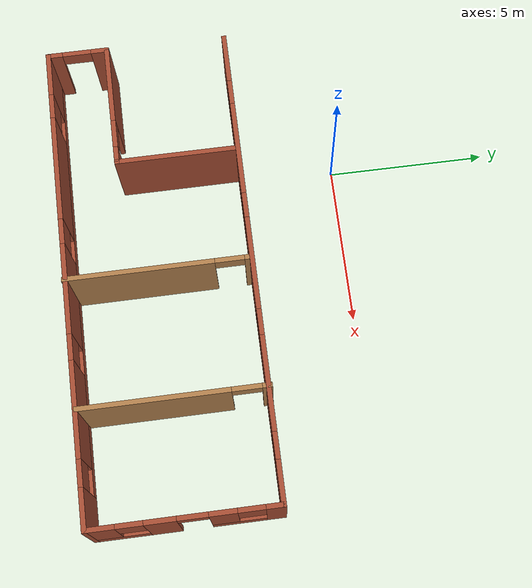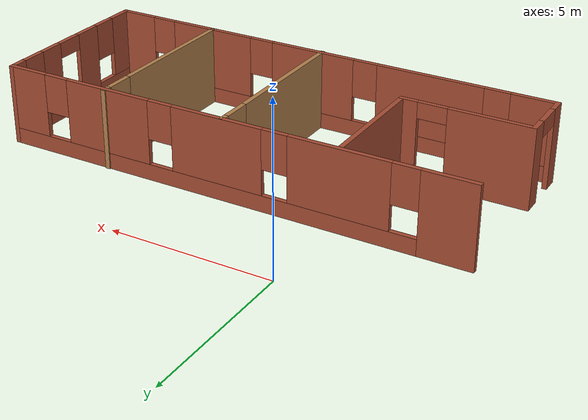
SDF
<?xml version='1.0'?>
<sdf version='1.6'>
  <model name='Building'>
    <pose frame=''>3.31458 -5.75778 0 0 -0 0</pose>
    <link name='Wall_0'>
      <pose frame=''>0.030417 2.79778 0 0 -0 0</pose>
      <visual name='Wall_0_Visual_0'>
        <pose frame=''>-6.69722 0 1.25 0 -0 0</pose>
        <geometry>
          <box>
            <size>1.60557 0.15 2.5</size>
          </box>
        </geometry>
        <material>
          <script>
            <uri>file://media/materials/scripts/gazebo.material</uri>
            <name>Gazebo/Bricks</name>
          </script>
          <ambient>0.996078 0.47451 0.0196078 1</ambient>
        </material>
        <meta>
          <layer>0</layer>
        </meta>
      </visual>
      <collision name='Wall_0_Collision_0'>
        <geometry>
          <box>
            <size>1.60557 0.15 2.5</size>
          </box>
        </geometry>
        <pose frame=''>-6.69722 0 1.25 0 -0 0</pose>
      </collision>
      <visual name='Wall_0_Visual_1'>
        <pose frame=''>0.802784 0 0.25 0 -0 0</pose>
        <geometry>
          <box>
            <size>13.3944 0.15 0.5</size>
          </box>
        </geometry>
        <material>
          <script>
            <uri>file://media/materials/scripts/gazebo.material</uri>
            <name>Gazebo/Bricks</name>
          </script>
          <ambient>0.996078 0.47451 0.0196078 1</ambient>
        </material>
        <meta>
          <layer>0</layer>
        </meta>
      </visual>
      <collision name='Wall_0_Collision_1'>
        <geometry>
          <box>
            <size>13.3944 0.15 0.5</size>
          </box>
        </geometry>
        <pose frame=''>0.802784 0 0.25 0 -0 0</pose>
      </collision>
      <visual name='Wall_0_Visual_2'>
        <pose frame=''>-3.57459 0 1.5 0 -0 0</pose>
        <geometry>
          <box>
            <size>3.03968 0.15 2</size>
          </box>
        </geometry>
        <material>
          <script>
            <uri>file://media/materials/scripts/gazebo.material</uri>
            <name>Gazebo/Bricks</name>
          </script>
          <ambient>0.996078 0.47451 0.0196078 1</ambient>
        </material>
        <meta>
          <layer>0</layer>
        </meta>
      </visual>
      <collision name='Wall_0_Collision_2'>
        <geometry>
          <box>
            <size>3.03968 0.15 2</size>
          </box>
        </geometry>
        <pose frame=''>-3.57459 0 1.5 0 -0 0</pose>
      </collision>
      <visual name='Wall_0_Visual_3'>
        <pose frame=''>0.207263 0 1.5 0 -0 0</pose>
        <geometry>
          <box>
            <size>2.92403 0.15 2</size>
          </box>
        </geometry>
        <material>
          <script>
            <uri>file://media/materials/scripts/gazebo.material</uri>
            <name>Gazebo/Bricks</name>
          </script>
          <ambient>0.996078 0.47451 0.0196078 1</ambient>
        </material>
        <meta>
          <layer>0</layer>
        </meta>
      </visual>
      <collision name='Wall_0_Collision_3'>
        <geometry>
          <box>
            <size>2.92403 0.15 2</size>
          </box>
        </geometry>
        <pose frame=''>0.207263 0 1.5 0 -0 0</pose>
      </collision>
      <visual name='Wall_0_Visual_4'>
        <pose frame=''>3.90816 0 1.5 0 -0 0</pose>
        <geometry>
          <box>
            <size>2.87777 0.15 2</size>
          </box>
        </geometry>
        <material>
          <script>
            <uri>file://media/materials/scripts/gazebo.material</uri>
            <name>Gazebo/Bricks</name>
          </script>
          <ambient>0.996078 0.47451 0.0196078 1</ambient>
        </material>
        <meta>
          <layer>0</layer>
        </meta>
      </visual>
      <collision name='Wall_0_Collision_4'>
        <geometry>
          <box>
            <size>2.87777 0.15 2</size>
          </box>
        </geometry>
        <pose frame=''>3.90816 0 1.5 0 -0 0</pose>
      </collision>
      <visual name='Wall_0_Visual_5'>
        <pose frame=''>6.82352 0 1.5 0 -0 0</pose>
        <geometry>
          <box>
            <size>1.35296 0.15 2</size>
          </box>
        </geometry>
        <material>
          <script>
            <uri>file://media/materials/scripts/gazebo.material</uri>
            <name>Gazebo/Bricks</name>
          </script>
          <ambient>0.996078 0.47451 0.0196078 1</ambient>
        </material>
        <meta>
          <layer>0</layer>
        </meta>
      </visual>
      <collision name='Wall_0_Collision_5'>
        <geometry>
          <box>
            <size>1.35296 0.15 2</size>
          </box>
        </geometry>
        <pose frame=''>6.82352 0 1.5 0 -0 0</pose>
      </collision>
      <visual name='Wall_0_Visual_6'>
        <pose frame=''>-5.49443 0 1.9 0 -0 0</pose>
        <geometry>
          <box>
            <size>0.8 0.15 1.2</size>
          </box>
        </geometry>
        <material>
          <script>
            <uri>file://media/materials/scripts/gazebo.material</uri>
            <name>Gazebo/Bricks</name>
          </script>
          <ambient>0.996078 0.47451 0.0196078 1</ambient>
        </material>
        <meta>
          <layer>0</layer>
        </meta>
      </visual>
      <collision name='Wall_0_Collision_6'>
        <geometry>
          <box>
            <size>0.8 0.15 1.2</size>
          </box>
        </geometry>
        <pose frame=''>-5.49443 0 1.9 0 -0 0</pose>
      </collision>
      <visual name='Wall_0_Visual_7'>
        <pose frame=''>-1.65475 0 1.9 0 -0 0</pose>
        <geometry>
          <box>
            <size>0.8 0.15 1.2</size>
          </box>
        </geometry>
        <material>
          <script>
            <uri>file://media/materials/scripts/gazebo.material</uri>
            <name>Gazebo/Bricks</name>
          </script>
          <ambient>0.996078 0.47451 0.0196078 1</ambient>
        </material>
        <meta>
          <layer>0</layer>
        </meta>
      </visual>
      <collision name='Wall_0_Collision_7'>
        <geometry>
          <box>
            <size>0.8 0.15 1.2</size>
          </box>
        </geometry>
        <pose frame=''>-1.65475 0 1.9 0 -0 0</pose>
      </collision>
      <visual name='Wall_0_Visual_8'>
        <pose frame=''>2.06928 0 1.9 0 -0 0</pose>
        <geometry>
          <box>
            <size>0.8 0.15 1.2</size>
          </box>
        </geometry>
        <material>
          <script>
            <uri>file://media/materials/scripts/gazebo.material</uri>
            <name>Gazebo/Bricks</name>
          </script>
          <ambient>0.996078 0.47451 0.0196078 1</ambient>
        </material>
        <meta>
          <layer>0</layer>
        </meta>
      </visual>
      <collision name='Wall_0_Collision_8'>
        <geometry>
          <box>
            <size>0.8 0.15 1.2</size>
          </box>
        </geometry>
        <pose frame=''>2.06928 0 1.9 0 -0 0</pose>
      </collision>
      <visual name='Wall_0_Visual_9'>
        <pose frame=''>5.74704 0 1.9 0 -0 0</pose>
        <geometry>
          <box>
            <size>0.8 0.15 1.2</size>
          </box>
        </geometry>
        <material>
          <script>
            <uri>file://media/materials/scripts/gazebo.material</uri>
            <name>Gazebo/Bricks</name>
          </script>
          <ambient>0.996078 0.47451 0.0196078 1</ambient>
        </material>
        <meta>
          <layer>0</layer>
        </meta>
      </visual>
      <collision name='Wall_0_Collision_9'>
        <geometry>
          <box>
            <size>0.8 0.15 1.2</size>
          </box>
        </geometry>
        <pose frame=''>5.74704 0 1.9 0 -0 0</pose>
      </collision>
    </link>
    <link name='Wall_1'>
      <pose frame=''>7.45542 -0.002216 0 0 0 -1.5708</pose>
      <visual name='Wall_1_Visual_0'>
        <pose frame=''>-2.5839 0 1.25 0 -0 0</pose>
        <geometry>
          <box>
            <size>0.582198 0.15 2.5</size>
          </box>
        </geometry>
        <material>
          <script>
            <uri>file://media/materials/scripts/gazebo.material</uri>
            <name>Gazebo/Bricks</name>
          </script>
          <ambient>0.996078 0.47451 0.0196078 1</ambient>
        </material>
        <meta>
          <layer>0</layer>
        </meta>
      </visual>
      <collision name='Wall_1_Collision_0'>
        <geometry>
          <box>
            <size>0.582198 0.15 2.5</size>
          </box>
        </geometry>
        <pose frame=''>-2.5839 0 1.25 0 -0 0</pose>
      </collision>
      <visual name='Wall_1_Visual_1'>
        <pose frame=''>0.68813 0 1.25 0 -0 0</pose>
        <geometry>
          <box>
            <size>0.931057 0.15 2.5</size>
          </box>
        </geometry>
        <material>
          <script>
            <uri>file://media/materials/scripts/gazebo.material</uri>
            <name>Gazebo/Bricks</name>
          </script>
          <ambient>0.996078 0.47451 0.0196078 1</ambient>
        </material>
        <meta>
          <layer>0</layer>
        </meta>
      </visual>
      <collision name='Wall_1_Collision_1'>
        <geometry>
          <box>
            <size>0.931057 0.15 2.5</size>
          </box>
        </geometry>
        <pose frame=''>0.68813 0 1.25 0 -0 0</pose>
      </collision>
      <visual name='Wall_1_Visual_2'>
        <pose frame=''>-1.4851 0 0.25 0 -0 0</pose>
        <geometry>
          <box>
            <size>1.6154 0.15 0.5</size>
          </box>
        </geometry>
        <material>
          <script>
            <uri>file://media/materials/scripts/gazebo.material</uri>
            <name>Gazebo/Bricks</name>
          </script>
          <ambient>0.996078 0.47451 0.0196078 1</ambient>
        </material>
        <meta>
          <layer>0</layer>
        </meta>
      </visual>
      <collision name='Wall_1_Collision_2'>
        <geometry>
          <box>
            <size>1.6154 0.15 0.5</size>
          </box>
        </geometry>
        <pose frame=''>-1.4851 0 0.25 0 -0 0</pose>
      </collision>
      <visual name='Wall_1_Visual_3'>
        <pose frame=''>2.01433 0 0.25 0 -0 0</pose>
        <geometry>
          <box>
            <size>1.72134 0.15 0.5</size>
          </box>
        </geometry>
        <material>
          <script>
            <uri>file://media/materials/scripts/gazebo.material</uri>
            <name>Gazebo/Bricks</name>
          </script>
          <ambient>0.996078 0.47451 0.0196078 1</ambient>
        </material>
        <meta>
          <layer>0</layer>
        </meta>
      </visual>
      <collision name='Wall_1_Collision_3'>
        <geometry>
          <box>
            <size>1.72134 0.15 0.5</size>
          </box>
        </geometry>
        <pose frame=''>2.01433 0 0.25 0 -0 0</pose>
      </collision>
      <visual name='Wall_1_Visual_4'>
        <pose frame=''>-1.0851 0 1.5 0 -0 0</pose>
        <geometry>
          <box>
            <size>0.815404 0.15 2</size>
          </box>
        </geometry>
        <material>
          <script>
            <uri>file://media/materials/scripts/gazebo.material</uri>
            <name>Gazebo/Bricks</name>
          </script>
          <ambient>0.996078 0.47451 0.0196078 1</ambient>
        </material>
        <meta>
          <layer>0</layer>
        </meta>
      </visual>
      <collision name='Wall_1_Collision_4'>
        <geometry>
          <box>
            <size>0.815404 0.15 2</size>
          </box>
        </geometry>
        <pose frame=''>-1.0851 0 1.5 0 -0 0</pose>
      </collision>
      <visual name='Wall_1_Visual_5'>
        <pose frame=''>-1.0851 0 1.5 0 -0 0</pose>
        <geometry>
          <box>
            <size>0.815404 0.15 2</size>
          </box>
        </geometry>
        <material>
          <script>
            <uri>file://media/materials/scripts/gazebo.material</uri>
            <name>Gazebo/Bricks</name>
          </script>
          <ambient>0.996078 0.47451 0.0196078 1</ambient>
        </material>
        <meta>
          <layer>0</layer>
        </meta>
      </visual>
      <collision name='Wall_1_Collision_5'>
        <geometry>
          <box>
            <size>0.815404 0.15 2</size>
          </box>
        </geometry>
        <pose frame=''>-1.0851 0 1.5 0 -0 0</pose>
      </collision>
      <visual name='Wall_1_Visual_6'>
        <pose frame=''>2.41433 0 1.5 0 -0 0</pose>
        <geometry>
          <box>
            <size>0.921342 0.15 2</size>
          </box>
        </geometry>
        <material>
          <script>
            <uri>file://media/materials/scripts/gazebo.material</uri>
            <name>Gazebo/Bricks</name>
          </script>
          <ambient>0.996078 0.47451 0.0196078 1</ambient>
        </material>
        <meta>
          <layer>0</layer>
        </meta>
      </visual>
      <collision name='Wall_1_Collision_6'>
        <geometry>
          <box>
            <size>0.921342 0.15 2</size>
          </box>
        </geometry>
        <pose frame=''>2.41433 0 1.5 0 -0 0</pose>
      </collision>
      <visual name='Wall_1_Visual_7'>
        <pose frame=''>-1.8928 0 1.9 0 -0 0</pose>
        <geometry>
          <box>
            <size>0.8 0.15 1.2</size>
          </box>
        </geometry>
        <material>
          <script>
            <uri>file://media/materials/scripts/gazebo.material</uri>
            <name>Gazebo/Bricks</name>
          </script>
          <ambient>0.996078 0.47451 0.0196078 1</ambient>
        </material>
        <meta>
          <layer>0</layer>
        </meta>
      </visual>
      <collision name='Wall_1_Collision_7'>
        <geometry>
          <box>
            <size>0.8 0.15 1.2</size>
          </box>
        </geometry>
        <pose frame=''>-1.8928 0 1.9 0 -0 0</pose>
      </collision>
      <visual name='Wall_1_Visual_8'>
        <pose frame=''>1.55366 0 1.9 0 -0 0</pose>
        <geometry>
          <box>
            <size>0.8 0.15 1.2</size>
          </box>
        </geometry>
        <material>
          <script>
            <uri>file://media/materials/scripts/gazebo.material</uri>
            <name>Gazebo/Bricks</name>
          </script>
          <ambient>0.996078 0.47451 0.0196078 1</ambient>
        </material>
        <meta>
          <layer>0</layer>
        </meta>
      </visual>
      <collision name='Wall_1_Collision_8'>
        <geometry>
          <box>
            <size>0.8 0.15 1.2</size>
          </box>
        </geometry>
        <pose frame=''>1.55366 0 1.9 0 -0 0</pose>
      </collision>
      <visual name='Wall_1_Visual_9'>
        <pose frame=''>-0.227398 0 2.25 0 -0 0</pose>
        <geometry>
          <box>
            <size>0.9 0.15 0.5</size>
          </box>
        </geometry>
        <material>
          <script>
            <uri>file://media/materials/scripts/gazebo.material</uri>
            <name>Gazebo/Bricks</name>
          </script>
          <ambient>0.996078 0.47451 0.0196078 1</ambient>
        </material>
        <meta>
          <layer>0</layer>
        </meta>
      </visual>
      <collision name='Wall_1_Collision_9'>
        <geometry>
          <box>
            <size>0.9 0.15 0.5</size>
          </box>
        </geometry>
        <pose frame=''>-0.227398 0 2.25 0 -0 0</pose>
      </collision>
      <visual name='Wall_1_Visual_10'>
        <pose frame=''>-0.227398 0 2.25 0 -0 0</pose>
        <geometry>
          <box>
            <size>0.9 0.15 0.5</size>
          </box>
        </geometry>
        <material>
          <script>
            <uri>file://media/materials/scripts/gazebo.material</uri>
            <name>Gazebo/Bricks</name>
          </script>
          <ambient>0.996078 0.47451 0.0196078 1</ambient>
        </material>
        <meta>
          <layer>0</layer>
        </meta>
      </visual>
      <collision name='Wall_1_Collision_10'>
        <geometry>
          <box>
            <size>0.9 0.15 0.5</size>
          </box>
        </geometry>
        <pose frame=''>-0.227398 0 2.25 0 -0 0</pose>
      </collision>
    </link>
    <link name='Wall_2'>
      <pose frame=''>0.007604 -2.80222 0 0 -0 3.14159</pose>
      <visual name='Wall_2_Visual_0'>
        <pose frame=''>-6.88103 0 1.25 0 -0 0</pose>
        <geometry>
          <box>
            <size>1.28356 0.15 2.5</size>
          </box>
        </geometry>
        <material>
          <script>
            <uri>file://media/materials/scripts/gazebo.material</uri>
            <name>Gazebo/Bricks</name>
          </script>
          <ambient>0.996078 0.47451 0.0196078 1</ambient>
        </material>
        <meta>
          <layer>0</layer>
        </meta>
      </visual>
      <collision name='Wall_2_Collision_0'>
        <geometry>
          <box>
            <size>1.28356 0.15 2.5</size>
          </box>
        </geometry>
        <pose frame=''>-6.88103 0 1.25 0 -0 0</pose>
      </collision>
      <visual name='Wall_2_Visual_1'>
        <pose frame=''>0.641782 0 0.25 0 -0 0</pose>
        <geometry>
          <box>
            <size>13.7621 0.15 0.5</size>
          </box>
        </geometry>
        <material>
          <script>
            <uri>file://media/materials/scripts/gazebo.material</uri>
            <name>Gazebo/Bricks</name>
          </script>
          <ambient>0.996078 0.47451 0.0196078 1</ambient>
        </material>
        <meta>
          <layer>0</layer>
        </meta>
      </visual>
      <collision name='Wall_2_Collision_1'>
        <geometry>
          <box>
            <size>13.7621 0.15 0.5</size>
          </box>
        </geometry>
        <pose frame=''>0.641782 0 0.25 0 -0 0</pose>
      </collision>
      <visual name='Wall_2_Visual_2'>
        <pose frame=''>-3.9888 0 1.5 0 -0 0</pose>
        <geometry>
          <box>
            <size>2.9009 0.15 2</size>
          </box>
        </geometry>
        <material>
          <script>
            <uri>file://media/materials/scripts/gazebo.material</uri>
            <name>Gazebo/Bricks</name>
          </script>
          <ambient>0.996078 0.47451 0.0196078 1</ambient>
        </material>
        <meta>
          <layer>0</layer>
        </meta>
      </visual>
      <collision name='Wall_2_Collision_2'>
        <geometry>
          <box>
            <size>2.9009 0.15 2</size>
          </box>
        </geometry>
        <pose frame=''>-3.9888 0 1.5 0 -0 0</pose>
      </collision>
      <visual name='Wall_2_Visual_3'>
        <pose frame=''>-0.321831 0 1.5 0 -0 0</pose>
        <geometry>
          <box>
            <size>2.83304 0.15 2</size>
          </box>
        </geometry>
        <material>
          <script>
            <uri>file://media/materials/scripts/gazebo.material</uri>
            <name>Gazebo/Bricks</name>
          </script>
          <ambient>0.996078 0.47451 0.0196078 1</ambient>
        </material>
        <meta>
          <layer>0</layer>
        </meta>
      </visual>
      <collision name='Wall_2_Collision_3'>
        <geometry>
          <box>
            <size>2.83304 0.15 2</size>
          </box>
        </geometry>
        <pose frame=''>-0.321831 0 1.5 0 -0 0</pose>
      </collision>
      <visual name='Wall_2_Visual_4'>
        <pose frame=''>3.59656 0 1.5 0 -0 0</pose>
        <geometry>
          <box>
            <size>3.40374 0.15 2</size>
          </box>
        </geometry>
        <material>
          <script>
            <uri>file://media/materials/scripts/gazebo.material</uri>
            <name>Gazebo/Bricks</name>
          </script>
          <ambient>0.996078 0.47451 0.0196078 1</ambient>
        </material>
        <meta>
          <layer>0</layer>
        </meta>
      </visual>
      <collision name='Wall_2_Collision_4'>
        <geometry>
          <box>
            <size>3.40374 0.15 2</size>
          </box>
        </geometry>
        <pose frame=''>3.59656 0 1.5 0 -0 0</pose>
      </collision>
      <visual name='Wall_2_Visual_5'>
        <pose frame=''>6.81062 0 1.5 0 -0 0</pose>
        <geometry>
          <box>
            <size>1.42439 0.15 2</size>
          </box>
        </geometry>
        <material>
          <script>
            <uri>file://media/materials/scripts/gazebo.material</uri>
            <name>Gazebo/Bricks</name>
          </script>
          <ambient>0.996078 0.47451 0.0196078 1</ambient>
        </material>
        <meta>
          <layer>0</layer>
        </meta>
      </visual>
      <collision name='Wall_2_Collision_5'>
        <geometry>
          <box>
            <size>1.42439 0.15 2</size>
          </box>
        </geometry>
        <pose frame=''>6.81062 0 1.5 0 -0 0</pose>
      </collision>
      <visual name='Wall_2_Visual_6'>
        <pose frame=''>-5.83925 0 1.9 0 -0 0</pose>
        <geometry>
          <box>
            <size>0.8 0.15 1.2</size>
          </box>
        </geometry>
        <material>
          <script>
            <uri>file://media/materials/scripts/gazebo.material</uri>
            <name>Gazebo/Bricks</name>
          </script>
          <ambient>0.996078 0.47451 0.0196078 1</ambient>
        </material>
        <meta>
          <layer>0</layer>
        </meta>
      </visual>
      <collision name='Wall_2_Collision_6'>
        <geometry>
          <box>
            <size>0.8 0.15 1.2</size>
          </box>
        </geometry>
        <pose frame=''>-5.83925 0 1.9 0 -0 0</pose>
      </collision>
      <visual name='Wall_2_Visual_7'>
        <pose frame=''>-2.13835 0 1.9 0 -0 0</pose>
        <geometry>
          <box>
            <size>0.8 0.15 1.2</size>
          </box>
        </geometry>
        <material>
          <script>
            <uri>file://media/materials/scripts/gazebo.material</uri>
            <name>Gazebo/Bricks</name>
          </script>
          <ambient>0.996078 0.47451 0.0196078 1</ambient>
        </material>
        <meta>
          <layer>0</layer>
        </meta>
      </visual>
      <collision name='Wall_2_Collision_7'>
        <geometry>
          <box>
            <size>0.8 0.15 1.2</size>
          </box>
        </geometry>
        <pose frame=''>-2.13835 0 1.9 0 -0 0</pose>
      </collision>
      <visual name='Wall_2_Visual_8'>
        <pose frame=''>1.49469 0 1.9 0 -0 0</pose>
        <geometry>
          <box>
            <size>0.8 0.15 1.2</size>
          </box>
        </geometry>
        <material>
          <script>
            <uri>file://media/materials/scripts/gazebo.material</uri>
            <name>Gazebo/Bricks</name>
          </script>
          <ambient>0.996078 0.47451 0.0196078 1</ambient>
        </material>
        <meta>
          <layer>0</layer>
        </meta>
      </visual>
      <collision name='Wall_2_Collision_8'>
        <geometry>
          <box>
            <size>0.8 0.15 1.2</size>
          </box>
        </geometry>
        <pose frame=''>1.49469 0 1.9 0 -0 0</pose>
      </collision>
      <visual name='Wall_2_Visual_9'>
        <pose frame=''>5.69843 0 1.9 0 -0 0</pose>
        <geometry>
          <box>
            <size>0.8 0.15 1.2</size>
          </box>
        </geometry>
        <material>
          <script>
            <uri>file://media/materials/scripts/gazebo.material</uri>
            <name>Gazebo/Bricks</name>
          </script>
          <ambient>0.996078 0.47451 0.0196078 1</ambient>
        </material>
        <meta>
          <layer>0</layer>
        </meta>
      </visual>
      <collision name='Wall_2_Collision_9'>
        <geometry>
          <box>
            <size>0.8 0.15 1.2</size>
          </box>
        </geometry>
        <pose frame=''>5.69843 0 1.9 0 -0 0</pose>
      </collision>
    </link>
    <link name='Wall_3'>
      <pose frame=''>-7.45542 -1.87722 0 0 -0 1.5708</pose>
      <visual name='Wall_3_Visual_0'>
        <pose frame=''>-0.736618 0 1.25 0 -0 0</pose>
        <geometry>
          <box>
            <size>0.526763 0.15 2.5</size>
          </box>
        </geometry>
        <material>
          <script>
            <uri>file://media/materials/scripts/gazebo.material</uri>
            <name>Gazebo/Bricks</name>
          </script>
          <ambient>0.996078 0.47451 0.0196078 1</ambient>
        </material>
        <meta>
          <layer>0</layer>
        </meta>
      </visual>
      <collision name='Wall_3_Collision_0'>
        <geometry>
          <box>
            <size>0.526763 0.15 2.5</size>
          </box>
        </geometry>
        <pose frame=''>-0.736618 0 1.25 0 -0 0</pose>
      </collision>
      <visual name='Wall_3_Visual_1'>
        <pose frame=''>0.713382 0 1.25 0 -0 0</pose>
        <geometry>
          <box>
            <size>0.573237 0.15 2.5</size>
          </box>
        </geometry>
        <material>
          <script>
            <uri>file://media/materials/scripts/gazebo.material</uri>
            <name>Gazebo/Bricks</name>
          </script>
          <ambient>0.996078 0.47451 0.0196078 1</ambient>
        </material>
        <meta>
          <layer>0</layer>
        </meta>
      </visual>
      <collision name='Wall_3_Collision_1'>
        <geometry>
          <box>
            <size>0.573237 0.15 2.5</size>
          </box>
        </geometry>
        <pose frame=''>0.713382 0 1.25 0 -0 0</pose>
      </collision>
      <visual name='Wall_3_Visual_2'>
        <pose frame=''>-0.023237 0 2.25 0 -0 0</pose>
        <geometry>
          <box>
            <size>0.9 0.15 0.5</size>
          </box>
        </geometry>
        <material>
          <script>
            <uri>file://media/materials/scripts/gazebo.material</uri>
            <name>Gazebo/Bricks</name>
          </script>
          <ambient>0.996078 0.47451 0.0196078 1</ambient>
        </material>
        <meta>
          <layer>0</layer>
        </meta>
      </visual>
      <collision name='Wall_3_Collision_2'>
        <geometry>
          <box>
            <size>0.9 0.15 0.5</size>
          </box>
        </geometry>
        <pose frame=''>-0.023237 0 2.25 0 -0 0</pose>
      </collision>
    </link>
    <link name='Wall_4'>
      <pose frame=''>-5.5 -0.952216 0 0 -0 0</pose>
      <visual name='Wall_4_Visual_0'>
        <pose frame=''>-0.742269 0 1.25 0 -0 0</pose>
        <geometry>
          <box>
            <size>2.5763 0.15 2.5</size>
          </box>
        </geometry>
        <material>
          <script>
            <uri>file://media/materials/scripts/gazebo.material</uri>
            <name>Gazebo/Bricks</name>
          </script>
          <ambient>0.996078 0.47451 0.0196078 1</ambient>
        </material>
        <meta>
          <layer>0</layer>
        </meta>
      </visual>
      <collision name='Wall_4_Collision_0'>
        <geometry>
          <box>
            <size>2.5763 0.15 2.5</size>
          </box>
        </geometry>
        <pose frame=''>-0.742269 0 1.25 0 -0 0</pose>
      </collision>
      <visual name='Wall_4_Visual_1'>
        <pose frame=''>1.73815 0 1.25 0 -0 0</pose>
        <geometry>
          <box>
            <size>0.584538 0.15 2.5</size>
          </box>
        </geometry>
        <material>
          <script>
            <uri>file://media/materials/scripts/gazebo.material</uri>
            <name>Gazebo/Bricks</name>
          </script>
          <ambient>0.996078 0.47451 0.0196078 1</ambient>
        </material>
        <meta>
          <layer>0</layer>
        </meta>
      </visual>
      <collision name='Wall_4_Collision_1'>
        <geometry>
          <box>
            <size>0.584538 0.15 2.5</size>
          </box>
        </geometry>
        <pose frame=''>1.73815 0 1.25 0 -0 0</pose>
      </collision>
      <visual name='Wall_4_Visual_2'>
        <pose frame=''>0.99588 0 2.25 0 -0 0</pose>
        <geometry>
          <box>
            <size>0.9 0.15 0.5</size>
          </box>
        </geometry>
        <material>
          <script>
            <uri>file://media/materials/scripts/gazebo.material</uri>
            <name>Gazebo/Bricks</name>
          </script>
          <ambient>0.996078 0.47451 0.0196078 1</ambient>
        </material>
        <meta>
          <layer>0</layer>
        </meta>
      </visual>
      <collision name='Wall_4_Collision_2'>
        <geometry>
          <box>
            <size>0.9 0.15 0.5</size>
          </box>
        </geometry>
        <pose frame=''>0.99588 0 2.25 0 -0 0</pose>
      </collision>
    </link>
    <link name='Wall_5'>
      <collision name='Wall_5_Collision'>
        <geometry>
          <box>
            <size>3.75 0.15 2.5</size>
          </box>
        </geometry>
        <pose frame=''>0 0 1.25 0 -0 0</pose>
      </collision>
      <visual name='Wall_5_Visual'>
        <pose frame=''>0 0 1.25 0 -0 0</pose>
        <geometry>
          <box>
            <size>3.75 0.15 2.5</size>
          </box>
        </geometry>
        <material>
          <script>
            <uri>file://media/materials/scripts/gazebo.material</uri>
            <name>Gazebo/Bricks</name>
          </script>
          <ambient>0.996078 0.47451 0.0196078 1</ambient>
        </material>
        <meta>
          <layer>0</layer>
        </meta>
      </visual>
      <pose frame=''>-3.54458 0.847784 0 0 -0 1.5708</pose>
    </link>
    <link name='Wall_7'>
      <pose frame=''>0.047518 -0.038022 0 0 0 -1.5708</pose>
      <visual name='Wall_7_Visual_0'>
        <pose frame=''>-2.74246 0 1.25 0 -0 0</pose>
        <geometry>
          <box>
            <size>0.265086 0.15 2.5</size>
          </box>
        </geometry>
        <material>
          <script>
            <uri>file://media/materials/scripts/gazebo.material</uri>
            <name>Gazebo/Wood</name>
          </script>
          <ambient>0.996078 0.47451 0.0196078 1</ambient>
        </material>
        <meta>
          <layer>0</layer>
        </meta>
      </visual>
      <collision name='Wall_7_Collision_0'>
        <geometry>
          <box>
            <size>0.265086 0.15 2.5</size>
          </box>
        </geometry>
        <pose frame=''>-2.74246 0 1.25 0 -0 0</pose>
      </collision>
      <visual name='Wall_7_Visual_1'>
        <pose frame=''>0.582543 0 1.25 0 -0 0</pose>
        <geometry>
          <box>
            <size>4.58491 0.15 2.5</size>
          </box>
        </geometry>
        <material>
          <script>
            <uri>file://media/materials/scripts/gazebo.material</uri>
            <name>Gazebo/Wood</name>
          </script>
          <ambient>0.996078 0.47451 0.0196078 1</ambient>
        </material>
        <meta>
          <layer>0</layer>
        </meta>
      </visual>
      <collision name='Wall_7_Collision_1'>
        <geometry>
          <box>
            <size>4.58491 0.15 2.5</size>
          </box>
        </geometry>
        <pose frame=''>0.582543 0 1.25 0 -0 0</pose>
      </collision>
      <visual name='Wall_7_Visual_2'>
        <pose frame=''>-2.15991 0 2.25 0 -0 0</pose>
        <geometry>
          <box>
            <size>0.9 0.15 0.5</size>
          </box>
        </geometry>
        <material>
          <script>
            <uri>file://media/materials/scripts/gazebo.material</uri>
            <name>Gazebo/Wood</name>
          </script>
          <ambient>0.996078 0.47451 0.0196078 1</ambient>
        </material>
        <meta>
          <layer>0</layer>
        </meta>
      </visual>
      <collision name='Wall_7_Collision_2'>
        <geometry>
          <box>
            <size>0.9 0.15 0.5</size>
          </box>
        </geometry>
        <pose frame=''>-2.15991 0 2.25 0 -0 0</pose>
      </collision>
    </link>
    <link name='Wall_9'>
      <pose frame=''>4.00887 0.038022 0 0 0 -1.5708</pose>
      <visual name='Wall_9_Visual_0'>
        <pose frame=''>-2.72757 0 1.25 0 -0 0</pose>
        <geometry>
          <box>
            <size>0.294869 0.15 2.5</size>
          </box>
        </geometry>
        <material>
          <script>
            <uri>file://media/materials/scripts/gazebo.material</uri>
            <name>Gazebo/Wood</name>
          </script>
          <ambient>0.996078 0.47451 0.0196078 1</ambient>
        </material>
        <meta>
          <layer>0</layer>
        </meta>
      </visual>
      <collision name='Wall_9_Collision_0'>
        <geometry>
          <box>
            <size>0.294869 0.15 2.5</size>
          </box>
        </geometry>
        <pose frame=''>-2.72757 0 1.25 0 -0 0</pose>
      </collision>
      <visual name='Wall_9_Visual_1'>
        <pose frame=''>0.597434 0 1.25 0 -0 0</pose>
        <geometry>
          <box>
            <size>4.55513 0.15 2.5</size>
          </box>
        </geometry>
        <material>
          <script>
            <uri>file://media/materials/scripts/gazebo.material</uri>
            <name>Gazebo/Wood</name>
          </script>
          <ambient>0.996078 0.47451 0.0196078 1</ambient>
        </material>
        <meta>
          <layer>0</layer>
        </meta>
      </visual>
      <collision name='Wall_9_Collision_1'>
        <geometry>
          <box>
            <size>4.55513 0.15 2.5</size>
          </box>
        </geometry>
        <pose frame=''>0.597434 0 1.25 0 -0 0</pose>
      </collision>
      <visual name='Wall_9_Visual_2'>
        <pose frame=''>-2.13013 0 2.25 0 -0 0</pose>
        <geometry>
          <box>
            <size>0.9 0.15 0.5</size>
          </box>
        </geometry>
        <material>
          <script>
            <uri>file://media/materials/scripts/gazebo.material</uri>
            <name>Gazebo/Wood</name>
          </script>
          <ambient>0.996078 0.47451 0.0196078 1</ambient>
        </material>
        <meta>
          <layer>0</layer>
        </meta>
      </visual>
      <collision name='Wall_9_Collision_2'>
        <geometry>
          <box>
            <size>0.9 0.15 0.5</size>
          </box>
        </geometry>
        <pose frame=''>-2.13013 0 2.25 0 -0 0</pose>
      </collision>
    </link>
    <static>1</static>
  </model>
</sdf>
